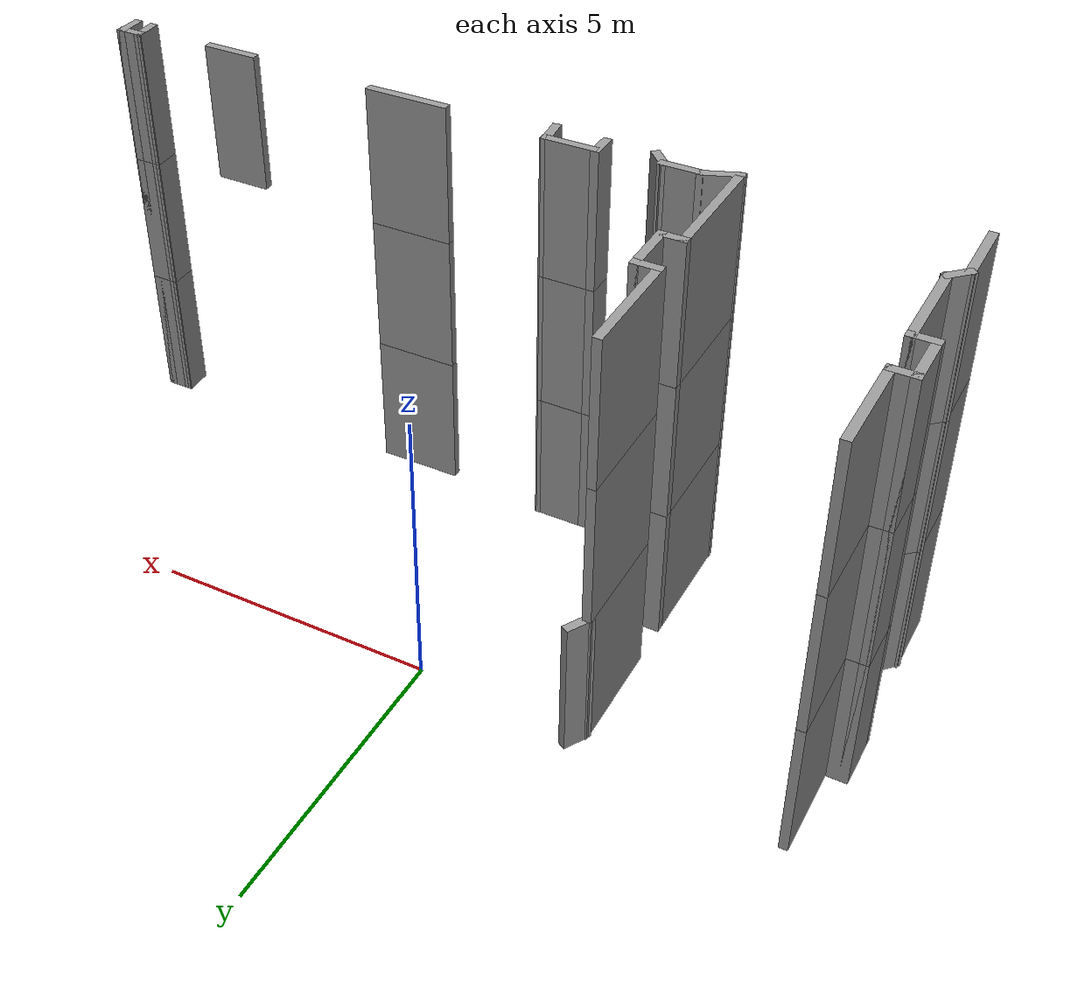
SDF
<sdf version="1.6">
 <model name="use_case1_stacked">
  <pose>0.822713 6.83476 0 0 -0 0</pose>
  <link name="Wall_100">
   <collision name="Wall_100_Collision">
    <geometry><box><size>0.5 0.15 2.5</size></box></geometry>
    <pose>0 0 1.25 0 -0 0</pose>
   </collision>
   <visual name="Wall_100_Visual">
    <pose>0 0 1.25 0 -0 0</pose>
    <geometry><box><size>0.5 0.15 2.5</size></box></geometry>
    <material>
     <script><uri>file://media/materials/scripts/gazebo.material</uri><name>Gazebo/Grey</name></script>
     <ambient>1 1 1 1</ambient>
    </material>
   </visual>
   <pose>-3.67133 -6.68702 0 0 0 -2.0944</pose>
  </link>
  <link name="Wall_101">
   <collision name="Wall_101_Collision">
    <geometry><box><size>2 0.15 2.5</size></box></geometry>
    <pose>0 0 1.25 0 -0 0</pose>
   </collision>
   <visual name="Wall_101_Visual">
    <pose>0 0 1.25 0 -0 0</pose>
    <geometry><box><size>2 0.15 2.5</size></box></geometry>
    <material>
     <script><uri>file://media/materials/scripts/gazebo.material</uri><name>Gazebo/Grey</name></script>
     <ambient>1 1 1 1</ambient>
    </material>
   </visual>
   <pose>-3.75883 -7.76357 0 0 0 -1.5708</pose>
  </link>
  <link name="Wall_103">
   <collision name="Wall_103_Collision">
    <geometry><box><size>0.5 0.15 2.5</size></box></geometry>
    <pose>0 0 1.25 0 -0 0</pose>
   </collision>
   <visual name="Wall_103_Visual">
    <pose>0 0 1.25 0 -0 0</pose>
    <geometry><box><size>0.5 0.15 2.5</size></box></geometry>
    <material>
     <script><uri>file://media/materials/scripts/gazebo.material</uri><name>Gazebo/Grey</name></script>
     <ambient>1 1 1 1</ambient>
    </material>
   </visual>
   <pose>-3.58383 -8.68857 0 0 -0 0</pose>
  </link>
  <link name="Wall_104">
   <collision name="Wall_104_Collision">
    <geometry><box><size>1 0.15 2.5</size></box></geometry>
    <pose>0 0 1.25 0 -0 0</pose>
   </collision>
   <visual name="Wall_104_Visual">
    <pose>0 0 1.25 0 -0 0</pose>
    <geometry><box><size>1 0.15 2.5</size></box></geometry>
    <material>
     <script><uri>file://media/materials/scripts/gazebo.material</uri><name>Gazebo/Grey</name></script>
     <ambient>1 1 1 1</ambient>
    </material>
   </visual>
   <pose>-3.40883 -9.11357 0 0 0 -1.5708</pose>
  </link>
  <link name="Wall_105">
   <collision name="Wall_105_Collision">
    <geometry><box><size>0.5 0.15 2.5</size></box></geometry>
    <pose>0 0 1.25 0 -0 0</pose>
   </collision>
   <visual name="Wall_105_Visual">
    <pose>0 0 1.25 0 -0 0</pose>
    <geometry><box><size>0.5 0.15 2.5</size></box></geometry>
    <material>
     <script><uri>file://media/materials/scripts/gazebo.material</uri><name>Gazebo/Grey</name></script>
     <ambient>1 1 1 1</ambient>
    </material>
   </visual>
   <pose>-3.58383 -9.53857 0 0 -0 3.14159</pose>
  </link>
  <link name="Wall_106">
   <collision name="Wall_106_Collision">
    <geometry><box><size>2.25 0.15 2.5</size></box></geometry>
    <pose>0 0 1.25 0 -0 0</pose>
   </collision>
   <visual name="Wall_106_Visual">
    <pose>0 0 1.25 0 -0 0</pose>
    <geometry><box><size>2.25 0.15 2.5</size></box></geometry>
    <material>
     <script><uri>file://media/materials/scripts/gazebo.material</uri><name>Gazebo/Grey</name></script>
     <ambient>1 1 1 1</ambient>
    </material>
   </visual>
   <pose>-3.75883 -10.5886 0 0 0 -1.5708</pose>
  </link>
  <link name="Wall_108">
   <collision name="Wall_108_Collision">
    <geometry><box><size>0.740104 0.15 2.5</size></box></geometry>
    <pose>0 0 1.25 0 -0 0</pose>
   </collision>
   <visual name="Wall_108_Visual">
    <pose>0 0 1.25 0 -0 0</pose>
    <geometry><box><size>0.740104 0.15 2.5</size></box></geometry>
    <material>
     <script><uri>file://media/materials/scripts/gazebo.material</uri><name>Gazebo/Grey</name></script>
     <ambient>1 1 1 1</ambient>
    </material>
   </visual>
   <pose>-3.48434 -11.5303 0 0 -0 0.375606</pose>
  </link>
  <link name="Wall_109">
   <collision name="Wall_109_Collision">
    <geometry><box><size>0.75 0.15 2.5</size></box></geometry>
    <pose>0 0 1.25 0 -0 0</pose>
   </collision>
   <visual name="Wall_109_Visual">
    <pose>0 0 1.25 0 -0 0</pose>
    <geometry><box><size>0.75 0.15 2.5</size></box></geometry>
    <material>
     <script><uri>file://media/materials/scripts/gazebo.material</uri><name>Gazebo/Grey</name></script>
     <ambient>1 1 1 1</ambient>
    </material>
   </visual>
   <pose>-2.89457 -11.4374 0 0 -0 0</pose>
  </link>
  <link name="Wall_110">
   <collision name="Wall_110_Collision">
    <geometry><box><size>0.489357 0.15 2.5</size></box></geometry>
    <pose>0 0 1.25 0 -0 0</pose>
   </collision>
   <visual name="Wall_110_Visual">
    <pose>0 0 1.25 0 -0 0</pose>
    <geometry><box><size>0.489357 0.15 2.5</size></box></geometry>
    <material>
     <script><uri>file://media/materials/scripts/gazebo.material</uri><name>Gazebo/Grey</name></script>
     <ambient>1 1 1 1</ambient>
    </material>
   </visual>
   <pose>-2.49377 -11.5458 0 0 0 -0.817273</pose>
  </link>
  <link name="Wall_112">
   <collision name="Wall_112_Collision">
    <geometry><box><size>0.484705 0.15 2.5</size></box></geometry>
    <pose>0 0 1.25 0 -0 0</pose>
   </collision>
   <visual name="Wall_112_Visual">
    <pose>0 0 1.25 0 -0 0</pose>
    <geometry><box><size>0.484705 0.15 2.5</size></box></geometry>
    <material>
     <script><uri>file://media/materials/scripts/gazebo.material</uri><name>Gazebo/Grey</name></script>
     <ambient>1 1 1 1</ambient>
    </material>
   </visual>
   <pose>-1.52767 -11.5022 0 0 -0 1.5708</pose>
  </link>
  <link name="Wall_113">
   <collision name="Wall_113_Collision">
    <geometry><box><size>1 0.15 2.5</size></box></geometry>
    <pose>0 0 1.25 0 -0 0</pose>
   </collision>
   <visual name="Wall_113_Visual">
    <pose>0 0 1.25 0 -0 0</pose>
    <geometry><box><size>1 0.15 2.5</size></box></geometry>
    <material>
     <script><uri>file://media/materials/scripts/gazebo.material</uri><name>Gazebo/Grey</name></script>
     <ambient>1 1 1 1</ambient>
    </material>
   </visual>
   <pose>-1.08737 -11.3349 0 0 -0 0</pose>
  </link>
  <link name="Wall_114">
   <collision name="Wall_114_Collision">
    <geometry><box><size>0.548536 0.15 2.5</size></box></geometry>
    <pose>0 0 1.25 0 -0 0</pose>
   </collision>
   <visual name="Wall_114_Visual">
    <pose>0 0 1.25 0 -0 0</pose>
    <geometry><box><size>0.548536 0.15 2.5</size></box></geometry>
    <material>
     <script><uri>file://media/materials/scripts/gazebo.material</uri><name>Gazebo/Grey</name></script>
     <ambient>1 1 1 1</ambient>
    </material>
   </visual>
   <pose>-0.654727 -11.5328 0 0 0 -1.45541</pose>
  </link>
  <link name="Wall_117">
   <collision name="Wall_117_Collision">
    <geometry><box><size>1.5 0.15 2.5</size></box></geometry>
    <pose>0 0 1.25 0 -0 0</pose>
   </collision>
   <visual name="Wall_117_Visual">
    <pose>0 0 1.25 0 -0 0</pose>
    <geometry><box><size>1.5 0.15 2.5</size></box></geometry>
    <material>
     <script><uri>file://media/materials/scripts/gazebo.material</uri><name>Gazebo/Grey</name></script>
     <ambient>1 1 1 1</ambient>
    </material>
   </visual>
   <pose>1.93103 -11.5099 0 0 -0 0</pose>
  </link>
  <link name="Wall_124">
   <collision name="Wall_124_Collision">
    <geometry><box><size>0.500334 0.15 2.5</size></box></geometry>
    <pose>0 0 1.25 0 -0 0</pose>
   </collision>
   <visual name="Wall_124_Visual">
    <pose>0 0 1.25 0 -0 0</pose>
    <geometry><box><size>0.500334 0.15 2.5</size></box></geometry>
    <material>
     <script><uri>file://media/materials/scripts/gazebo.material</uri><name>Gazebo/Grey</name></script>
     <ambient>1 1 1 1</ambient>
    </material>
   </visual>
   <pose>7.25209 -11.5824 0 0 -0 1.61447</pose>
  </link>
  <link name="Wall_125">
   <collision name="Wall_125_Collision">
    <geometry><box><size>0.5 0.15 2.5</size></box></geometry>
    <pose>0 0 1.25 0 -0 0</pose>
   </collision>
   <visual name="Wall_125_Visual">
    <pose>0 0 1.25 0 -0 0</pose>
    <geometry><box><size>0.5 0.15 2.5</size></box></geometry>
    <material>
     <script><uri>file://media/materials/scripts/gazebo.material</uri><name>Gazebo/Grey</name></script>
     <ambient>1 1 1 1</ambient>
    </material>
   </visual>
   <pose>7.43473 -11.4074 0 0 -0 0</pose>
  </link>
  <link name="Wall_126">
   <collision name="Wall_126_Collision">
    <geometry><box><size>0.5 0.15 2.5</size></box></geometry>
    <pose>0 0 1.25 0 -0 0</pose>
   </collision>
   <visual name="Wall_126_Visual">
    <pose>0 0 1.25 0 -0 0</pose>
    <geometry><box><size>0.5 0.15 2.5</size></box></geometry>
    <material>
     <script><uri>file://media/materials/scripts/gazebo.material</uri><name>Gazebo/Grey</name></script>
     <ambient>1 1 1 1</ambient>
    </material>
   </visual>
   <pose>7.59444 -11.5824 0 0 0 -1.5708</pose>
  </link>
  <link name="Wall_276">
   <collision name="Wall_276_Collision">
    <geometry><box><size>1.25 0.15 2.5</size></box></geometry>
    <pose>0 0 1.25 0 -0 0</pose>
   </collision>
   <visual name="Wall_276_Visual">
    <pose>0 0 1.25 0 -0 0</pose>
    <geometry><box><size>1.25 0.15 2.5</size></box></geometry>
    <material>
     <script><uri>file://media/materials/scripts/gazebo.material</uri><name>Gazebo/Grey</name></script>
     <ambient>1 1 1 1</ambient>
    </material>
   </visual>
   <pose>-7.5129 -11.16 2.5 0 -0 1.5708</pose>
  </link>
  <link name="Wall_277">
   <collision name="Wall_277_Collision">
    <geometry><box><size>0.5 0.15 2.5</size></box></geometry>
    <pose>0 0 1.25 0 -0 0</pose>
   </collision>
   <visual name="Wall_277_Visual">
    <pose>0 0 1.25 0 -0 0</pose>
    <geometry><box><size>0.5 0.15 2.5</size></box></geometry>
    <material>
     <script><uri>file://media/materials/scripts/gazebo.material</uri><name>Gazebo/Grey</name></script>
     <ambient>1 1 1 1</ambient>
    </material>
   </visual>
   <pose>-7.38916 -10.4863 2.5 0 -0 0.785398</pose>
  </link>
  <link name="Wall_278">
   <collision name="Wall_278_Collision">
    <geometry><box><size>1.75 0.15 2.5</size></box></geometry>
    <pose>0 0 1.25 0 -0 0</pose>
   </collision>
   <visual name="Wall_278_Visual">
    <pose>0 0 1.25 0 -0 0</pose>
    <geometry><box><size>1.75 0.15 2.5</size></box></geometry>
    <material>
     <script><uri>file://media/materials/scripts/gazebo.material</uri><name>Gazebo/Grey</name></script>
     <ambient>1 1 1 1</ambient>
    </material>
   </visual>
   <pose>-7.26541 -9.56256 2.5 0 -0 1.5708</pose>
  </link>
  <link name="Wall_279">
   <collision name="Wall_279_Collision">
    <geometry><box><size>0.5 0.15 2.5</size></box></geometry>
    <pose>0 0 1.25 0 -0 0</pose>
   </collision>
   <visual name="Wall_279_Visual">
    <pose>0 0 1.25 0 -0 0</pose>
    <geometry><box><size>0.5 0.15 2.5</size></box></geometry>
    <material>
     <script><uri>file://media/materials/scripts/gazebo.material</uri><name>Gazebo/Grey</name></script>
     <ambient>1 1 1 1</ambient>
    </material>
   </visual>
   <pose>-7.44041 -8.76256 2.5 0 -0 3.14159</pose>
  </link>
  <link name="Wall_280">
   <collision name="Wall_280_Collision">
    <geometry><box><size>1 0.15 2.5</size></box></geometry>
    <pose>0 0 1.25 0 -0 0</pose>
   </collision>
   <visual name="Wall_280_Visual">
    <pose>0 0 1.25 0 -0 0</pose>
    <geometry><box><size>1 0.15 2.5</size></box></geometry>
    <material>
     <script><uri>file://media/materials/scripts/gazebo.material</uri><name>Gazebo/Grey</name></script>
     <ambient>1 1 1 1</ambient>
    </material>
   </visual>
   <pose>-7.61541 -8.33756 2.5 0 -0 1.5708</pose>
  </link>
  <link name="Wall_281">
   <collision name="Wall_281_Collision">
    <geometry><box><size>0.5 0.15 2.5</size></box></geometry>
    <pose>0 0 1.25 0 -0 0</pose>
   </collision>
   <visual name="Wall_281_Visual">
    <pose>0 0 1.25 0 -0 0</pose>
    <geometry><box><size>0.5 0.15 2.5</size></box></geometry>
    <material>
     <script><uri>file://media/materials/scripts/gazebo.material</uri><name>Gazebo/Grey</name></script>
     <ambient>1 1 1 1</ambient>
    </material>
   </visual>
   <pose>-7.44041 -7.91256 2.5 0 -0 0</pose>
  </link>
  <link name="Wall_282">
   <collision name="Wall_282_Collision">
    <geometry><box><size>1.75 0.15 2.5</size></box></geometry>
    <pose>0 0 1.25 0 -0 0</pose>
   </collision>
   <visual name="Wall_282_Visual">
    <pose>0 0 1.25 0 -0 0</pose>
    <geometry><box><size>1.75 0.15 2.5</size></box></geometry>
    <material>
     <script><uri>file://media/materials/scripts/gazebo.material</uri><name>Gazebo/Grey</name></script>
     <ambient>1 1 1 1</ambient>
    </material>
   </visual>
   <pose>-7.26541 -7.11256 2.5 0 -0 1.5708</pose>
  </link>
  <link name="Wall_305">
   <collision name="Wall_305_Collision">
    <geometry><box><size>2 0.15 2.5</size></box></geometry>
    <pose>0 0 1.25 0 -0 0</pose>
   </collision>
   <visual name="Wall_305_Visual">
    <pose>0 0 1.25 0 -0 0</pose>
    <geometry><box><size>2 0.15 2.5</size></box></geometry>
    <material>
     <script><uri>file://media/materials/scripts/gazebo.material</uri><name>Gazebo/Grey</name></script>
     <ambient>1 1 1 1</ambient>
    </material>
   </visual>
   <pose>-3.75883 -7.76357 2.5 0 0 -1.5708</pose>
  </link>
  <link name="Wall_306">
   <collision name="Wall_306_Collision">
    <geometry><box><size>0.5 0.15 2.5</size></box></geometry>
    <pose>0 0 1.25 0 -0 0</pose>
   </collision>
   <visual name="Wall_306_Visual">
    <pose>0 0 1.25 0 -0 0</pose>
    <geometry><box><size>0.5 0.15 2.5</size></box></geometry>
    <material>
     <script><uri>file://media/materials/scripts/gazebo.material</uri><name>Gazebo/Grey</name></script>
     <ambient>1 1 1 1</ambient>
    </material>
   </visual>
   <pose>-3.58383 -8.68857 2.5 0 -0 0</pose>
  </link>
  <link name="Wall_307">
   <collision name="Wall_307_Collision">
    <geometry><box><size>1 0.15 2.5</size></box></geometry>
    <pose>0 0 1.25 0 -0 0</pose>
   </collision>
   <visual name="Wall_307_Visual">
    <pose>0 0 1.25 0 -0 0</pose>
    <geometry><box><size>1 0.15 2.5</size></box></geometry>
    <material>
     <script><uri>file://media/materials/scripts/gazebo.material</uri><name>Gazebo/Grey</name></script>
     <ambient>1 1 1 1</ambient>
    </material>
   </visual>
   <pose>-3.40883 -9.11357 2.5 0 0 -1.5708</pose>
  </link>
  <link name="Wall_308">
   <collision name="Wall_308_Collision">
    <geometry><box><size>0.5 0.15 2.5</size></box></geometry>
    <pose>0 0 1.25 0 -0 0</pose>
   </collision>
   <visual name="Wall_308_Visual">
    <pose>0 0 1.25 0 -0 0</pose>
    <geometry><box><size>0.5 0.15 2.5</size></box></geometry>
    <material>
     <script><uri>file://media/materials/scripts/gazebo.material</uri><name>Gazebo/Grey</name></script>
     <ambient>1 1 1 1</ambient>
    </material>
   </visual>
   <pose>-3.58383 -9.53857 2.5 0 -0 3.14159</pose>
  </link>
  <link name="Wall_309">
   <collision name="Wall_309_Collision">
    <geometry><box><size>2.25 0.15 2.5</size></box></geometry>
    <pose>0 0 1.25 0 -0 0</pose>
   </collision>
   <visual name="Wall_309_Visual">
    <pose>0 0 1.25 0 -0 0</pose>
    <geometry><box><size>2.25 0.15 2.5</size></box></geometry>
    <material>
     <script><uri>file://media/materials/scripts/gazebo.material</uri><name>Gazebo/Grey</name></script>
     <ambient>1 1 1 1</ambient>
    </material>
   </visual>
   <pose>-3.75883 -10.5886 2.5 0 0 -1.5708</pose>
  </link>
  <link name="Wall_310">
   <collision name="Wall_310_Collision">
    <geometry><box><size>0.740104 0.15 2.5</size></box></geometry>
    <pose>0 0 1.25 0 -0 0</pose>
   </collision>
   <visual name="Wall_310_Visual">
    <pose>0 0 1.25 0 -0 0</pose>
    <geometry><box><size>0.740104 0.15 2.5</size></box></geometry>
    <material>
     <script><uri>file://media/materials/scripts/gazebo.material</uri><name>Gazebo/Grey</name></script>
     <ambient>1 1 1 1</ambient>
    </material>
   </visual>
   <pose>-3.48434 -11.5303 2.5 0 -0 0.375606</pose>
  </link>
  <link name="Wall_311">
   <collision name="Wall_311_Collision">
    <geometry><box><size>0.75 0.15 2.5</size></box></geometry>
    <pose>0 0 1.25 0 -0 0</pose>
   </collision>
   <visual name="Wall_311_Visual">
    <pose>0 0 1.25 0 -0 0</pose>
    <geometry><box><size>0.75 0.15 2.5</size></box></geometry>
    <material>
     <script><uri>file://media/materials/scripts/gazebo.material</uri><name>Gazebo/Grey</name></script>
     <ambient>1 1 1 1</ambient>
    </material>
   </visual>
   <pose>-2.89457 -11.4374 2.5 0 -0 0</pose>
  </link>
  <link name="Wall_312">
   <collision name="Wall_312_Collision">
    <geometry><box><size>0.489357 0.15 2.5</size></box></geometry>
    <pose>0 0 1.25 0 -0 0</pose>
   </collision>
   <visual name="Wall_312_Visual">
    <pose>0 0 1.25 0 -0 0</pose>
    <geometry><box><size>0.489357 0.15 2.5</size></box></geometry>
    <material>
     <script><uri>file://media/materials/scripts/gazebo.material</uri><name>Gazebo/Grey</name></script>
     <ambient>1 1 1 1</ambient>
    </material>
   </visual>
   <pose>-2.49377 -11.5458 2.5 0 0 -0.817273</pose>
  </link>
  <link name="Wall_314">
   <collision name="Wall_314_Collision">
    <geometry><box><size>0.484705 0.15 2.5</size></box></geometry>
    <pose>0 0 1.25 0 -0 0</pose>
   </collision>
   <visual name="Wall_314_Visual">
    <pose>0 0 1.25 0 -0 0</pose>
    <geometry><box><size>0.484705 0.15 2.5</size></box></geometry>
    <material>
     <script><uri>file://media/materials/scripts/gazebo.material</uri><name>Gazebo/Grey</name></script>
     <ambient>1 1 1 1</ambient>
    </material>
   </visual>
   <pose>-1.52767 -11.5022 2.5 0 -0 1.5708</pose>
  </link>
  <link name="Wall_315">
   <collision name="Wall_315_Collision">
    <geometry><box><size>1 0.15 2.5</size></box></geometry>
    <pose>0 0 1.25 0 -0 0</pose>
   </collision>
   <visual name="Wall_315_Visual">
    <pose>0 0 1.25 0 -0 0</pose>
    <geometry><box><size>1 0.15 2.5</size></box></geometry>
    <material>
     <script><uri>file://media/materials/scripts/gazebo.material</uri><name>Gazebo/Grey</name></script>
     <ambient>1 1 1 1</ambient>
    </material>
   </visual>
   <pose>-1.08737 -11.3349 2.5 0 -0 0</pose>
  </link>
  <link name="Wall_316">
   <collision name="Wall_316_Collision">
    <geometry><box><size>0.548536 0.15 2.5</size></box></geometry>
    <pose>0 0 1.25 0 -0 0</pose>
   </collision>
   <visual name="Wall_316_Visual">
    <pose>0 0 1.25 0 -0 0</pose>
    <geometry><box><size>0.548536 0.15 2.5</size></box></geometry>
    <material>
     <script><uri>file://media/materials/scripts/gazebo.material</uri><name>Gazebo/Grey</name></script>
     <ambient>1 1 1 1</ambient>
    </material>
   </visual>
   <pose>-0.654727 -11.5328 2.5 0 0 -1.45541</pose>
  </link>
  <link name="Wall_319">
   <collision name="Wall_319_Collision">
    <geometry><box><size>1.5 0.15 2.5</size></box></geometry>
    <pose>0 0 1.25 0 -0 0</pose>
   </collision>
   <visual name="Wall_319_Visual">
    <pose>0 0 1.25 0 -0 0</pose>
    <geometry><box><size>1.5 0.15 2.5</size></box></geometry>
    <material>
     <script><uri>file://media/materials/scripts/gazebo.material</uri><name>Gazebo/Grey</name></script>
     <ambient>1 1 1 1</ambient>
    </material>
   </visual>
   <pose>1.93103 -11.5099 2.5 0 -0 0</pose>
  </link>
  <link name="Wall_326">
   <collision name="Wall_326_Collision">
    <geometry><box><size>0.500334 0.15 2.5</size></box></geometry>
    <pose>0 0 1.25 0 -0 0</pose>
   </collision>
   <visual name="Wall_326_Visual">
    <pose>0 0 1.25 0 -0 0</pose>
    <geometry><box><size>0.500334 0.15 2.5</size></box></geometry>
    <material>
     <script><uri>file://media/materials/scripts/gazebo.material</uri><name>Gazebo/Grey</name></script>
     <ambient>1 1 1 1</ambient>
    </material>
   </visual>
   <pose>7.25209 -11.5824 2.5 0 -0 1.61447</pose>
  </link>
  <link name="Wall_327">
   <collision name="Wall_327_Collision">
    <geometry><box><size>0.5 0.15 2.5</size></box></geometry>
    <pose>0 0 1.25 0 -0 0</pose>
   </collision>
   <visual name="Wall_327_Visual">
    <pose>0 0 1.25 0 -0 0</pose>
    <geometry><box><size>0.5 0.15 2.5</size></box></geometry>
    <material>
     <script><uri>file://media/materials/scripts/gazebo.material</uri><name>Gazebo/Grey</name></script>
     <ambient>1 1 1 1</ambient>
    </material>
   </visual>
   <pose>7.43473 -11.4074 2.5 0 -0 0</pose>
  </link>
  <link name="Wall_328">
   <collision name="Wall_328_Collision">
    <geometry><box><size>0.5 0.15 2.5</size></box></geometry>
    <pose>0 0 1.25 0 -0 0</pose>
   </collision>
   <visual name="Wall_328_Visual">
    <pose>0 0 1.25 0 -0 0</pose>
    <geometry><box><size>0.5 0.15 2.5</size></box></geometry>
    <material>
     <script><uri>file://media/materials/scripts/gazebo.material</uri><name>Gazebo/Grey</name></script>
     <ambient>1 1 1 1</ambient>
    </material>
   </visual>
   <pose>7.59444 -11.5824 2.5 0 0 -1.5708</pose>
  </link>
  <link name="Wall_343">
   <collision name="Wall_343_Collision">
    <geometry><box><size>1.25 0.15 2.5</size></box></geometry>
    <pose>0 0 1.25 0 -0 0</pose>
   </collision>
   <visual name="Wall_343_Visual">
    <pose>0 0 1.25 0 -0 0</pose>
    <geometry><box><size>1.25 0.15 2.5</size></box></geometry>
    <material>
     <script><uri>file://media/materials/scripts/gazebo.material</uri><name>Gazebo/Grey</name></script>
     <ambient>1 1 1 1</ambient>
    </material>
   </visual>
   <pose>-7.5129 -11.16 5 0 -0 1.5708</pose>
  </link>
  <link name="Wall_344">
   <collision name="Wall_344_Collision">
    <geometry><box><size>0.5 0.15 2.5</size></box></geometry>
    <pose>0 0 1.25 0 -0 0</pose>
   </collision>
   <visual name="Wall_344_Visual">
    <pose>0 0 1.25 0 -0 0</pose>
    <geometry><box><size>0.5 0.15 2.5</size></box></geometry>
    <material>
     <script><uri>file://media/materials/scripts/gazebo.material</uri><name>Gazebo/Grey</name></script>
     <ambient>1 1 1 1</ambient>
    </material>
   </visual>
   <pose>-7.38916 -10.4863 5 0 -0 0.785398</pose>
  </link>
  <link name="Wall_345">
   <collision name="Wall_345_Collision">
    <geometry><box><size>1.75 0.15 2.5</size></box></geometry>
    <pose>0 0 1.25 0 -0 0</pose>
   </collision>
   <visual name="Wall_345_Visual">
    <pose>0 0 1.25 0 -0 0</pose>
    <geometry><box><size>1.75 0.15 2.5</size></box></geometry>
    <material>
     <script><uri>file://media/materials/scripts/gazebo.material</uri><name>Gazebo/Grey</name></script>
     <ambient>1 1 1 1</ambient>
    </material>
   </visual>
   <pose>-7.26541 -9.56256 5 0 -0 1.5708</pose>
  </link>
  <link name="Wall_346">
   <collision name="Wall_346_Collision">
    <geometry><box><size>0.5 0.15 2.5</size></box></geometry>
    <pose>0 0 1.25 0 -0 0</pose>
   </collision>
   <visual name="Wall_346_Visual">
    <pose>0 0 1.25 0 -0 0</pose>
    <geometry><box><size>0.5 0.15 2.5</size></box></geometry>
    <material>
     <script><uri>file://media/materials/scripts/gazebo.material</uri><name>Gazebo/Grey</name></script>
     <ambient>1 1 1 1</ambient>
    </material>
   </visual>
   <pose>-7.44041 -8.76256 5 0 -0 3.14159</pose>
  </link>
  <link name="Wall_347">
   <collision name="Wall_347_Collision">
    <geometry><box><size>1 0.15 2.5</size></box></geometry>
    <pose>0 0 1.25 0 -0 0</pose>
   </collision>
   <visual name="Wall_347_Visual">
    <pose>0 0 1.25 0 -0 0</pose>
    <geometry><box><size>1 0.15 2.5</size></box></geometry>
    <material>
     <script><uri>file://media/materials/scripts/gazebo.material</uri><name>Gazebo/Grey</name></script>
     <ambient>1 1 1 1</ambient>
    </material>
   </visual>
   <pose>-7.61541 -8.33756 5 0 -0 1.5708</pose>
  </link>
  <link name="Wall_348">
   <collision name="Wall_348_Collision">
    <geometry><box><size>0.5 0.15 2.5</size></box></geometry>
    <pose>0 0 1.25 0 -0 0</pose>
   </collision>
   <visual name="Wall_348_Visual">
    <pose>0 0 1.25 0 -0 0</pose>
    <geometry><box><size>0.5 0.15 2.5</size></box></geometry>
    <material>
     <script><uri>file://media/materials/scripts/gazebo.material</uri><name>Gazebo/Grey</name></script>
     <ambient>1 1 1 1</ambient>
    </material>
   </visual>
   <pose>-7.44041 -7.91256 5 0 -0 0</pose>
  </link>
  <link name="Wall_349">
   <collision name="Wall_349_Collision">
    <geometry><box><size>1.75 0.15 2.5</size></box></geometry>
    <pose>0 0 1.25 0 -0 0</pose>
   </collision>
   <visual name="Wall_349_Visual">
    <pose>0 0 1.25 0 -0 0</pose>
    <geometry><box><size>1.75 0.15 2.5</size></box></geometry>
    <material>
     <script><uri>file://media/materials/scripts/gazebo.material</uri><name>Gazebo/Grey</name></script>
     <ambient>1 1 1 1</ambient>
    </material>
   </visual>
   <pose>-7.26541 -7.11256 5 0 -0 1.5708</pose>
  </link>
  <link name="Wall_372">
   <collision name="Wall_372_Collision">
    <geometry><box><size>2 0.15 2.5</size></box></geometry>
    <pose>0 0 1.25 0 -0 0</pose>
   </collision>
   <visual name="Wall_372_Visual">
    <pose>0 0 1.25 0 -0 0</pose>
    <geometry><box><size>2 0.15 2.5</size></box></geometry>
    <material>
     <script><uri>file://media/materials/scripts/gazebo.material</uri><name>Gazebo/Grey</name></script>
     <ambient>1 1 1 1</ambient>
    </material>
   </visual>
   <pose>-3.75883 -7.76357 5 0 0 -1.5708</pose>
  </link>
  <link name="Wall_373">
   <collision name="Wall_373_Collision">
    <geometry><box><size>0.5 0.15 2.5</size></box></geometry>
    <pose>0 0 1.25 0 -0 0</pose>
   </collision>
   <visual name="Wall_373_Visual">
    <pose>0 0 1.25 0 -0 0</pose>
    <geometry><box><size>0.5 0.15 2.5</size></box></geometry>
    <material>
     <script><uri>file://media/materials/scripts/gazebo.material</uri><name>Gazebo/Grey</name></script>
     <ambient>1 1 1 1</ambient>
    </material>
   </visual>
   <pose>-3.58383 -8.68857 5 0 -0 0</pose>
  </link>
  <link name="Wall_374">
   <collision name="Wall_374_Collision">
    <geometry><box><size>1 0.15 2.5</size></box></geometry>
    <pose>0 0 1.25 0 -0 0</pose>
   </collision>
   <visual name="Wall_374_Visual">
    <pose>0 0 1.25 0 -0 0</pose>
    <geometry><box><size>1 0.15 2.5</size></box></geometry>
    <material>
     <script><uri>file://media/materials/scripts/gazebo.material</uri><name>Gazebo/Grey</name></script>
     <ambient>1 1 1 1</ambient>
    </material>
   </visual>
   <pose>-3.40883 -9.11357 5 0 0 -1.5708</pose>
  </link>
  <link name="Wall_375">
   <collision name="Wall_375_Collision">
    <geometry><box><size>0.5 0.15 2.5</size></box></geometry>
    <pose>0 0 1.25 0 -0 0</pose>
   </collision>
   <visual name="Wall_375_Visual">
    <pose>0 0 1.25 0 -0 0</pose>
    <geometry><box><size>0.5 0.15 2.5</size></box></geometry>
    <material>
     <script><uri>file://media/materials/scripts/gazebo.material</uri><name>Gazebo/Grey</name></script>
     <ambient>1 1 1 1</ambient>
    </material>
   </visual>
   <pose>-3.58383 -9.53857 5 0 -0 3.14159</pose>
  </link>
  <link name="Wall_376">
   <collision name="Wall_376_Collision">
    <geometry><box><size>2.25 0.15 2.5</size></box></geometry>
    <pose>0 0 1.25 0 -0 0</pose>
   </collision>
   <visual name="Wall_376_Visual">
    <pose>0 0 1.25 0 -0 0</pose>
    <geometry><box><size>2.25 0.15 2.5</size></box></geometry>
    <material>
     <script><uri>file://media/materials/scripts/gazebo.material</uri><name>Gazebo/Grey</name></script>
     <ambient>1 1 1 1</ambient>
    </material>
   </visual>
   <pose>-3.75883 -10.5886 5 0 0 -1.5708</pose>
  </link>
  <link name="Wall_377">
   <collision name="Wall_377_Collision">
    <geometry><box><size>0.740104 0.15 2.5</size></box></geometry>
    <pose>0 0 1.25 0 -0 0</pose>
   </collision>
   <visual name="Wall_377_Visual">
    <pose>0 0 1.25 0 -0 0</pose>
    <geometry><box><size>0.740104 0.15 2.5</size></box></geometry>
    <material>
     <script><uri>file://media/materials/scripts/gazebo.material</uri><name>Gazebo/Grey</name></script>
     <ambient>1 1 1 1</ambient>
    </material>
   </visual>
   <pose>-3.48434 -11.5303 5 0 -0 0.375606</pose>
  </link>
  <link name="Wall_378">
   <collision name="Wall_378_Collision">
    <geometry><box><size>0.75 0.15 2.5</size></box></geometry>
    <pose>0 0 1.25 0 -0 0</pose>
   </collision>
   <visual name="Wall_378_Visual">
    <pose>0 0 1.25 0 -0 0</pose>
    <geometry><box><size>0.75 0.15 2.5</size></box></geometry>
    <material>
     <script><uri>file://media/materials/scripts/gazebo.material</uri><name>Gazebo/Grey</name></script>
     <ambient>1 1 1 1</ambient>
    </material>
   </visual>
   <pose>-2.89457 -11.4374 5 0 -0 0</pose>
  </link>
  <link name="Wall_379">
   <collision name="Wall_379_Collision">
    <geometry><box><size>0.489357 0.15 2.5</size></box></geometry>
    <pose>0 0 1.25 0 -0 0</pose>
   </collision>
   <visual name="Wall_379_Visual">
    <pose>0 0 1.25 0 -0 0</pose>
    <geometry><box><size>0.489357 0.15 2.5</size></box></geometry>
    <material>
     <script><uri>file://media/materials/scripts/gazebo.material</uri><name>Gazebo/Grey</name></script>
     <ambient>1 1 1 1</ambient>
    </material>
   </visual>
   <pose>-2.49377 -11.5458 5 0 0 -0.817273</pose>
  </link>
  <link name="Wall_381">
   <collision name="Wall_381_Collision">
    <geometry><box><size>0.484705 0.15 2.5</size></box></geometry>
    <pose>0 0 1.25 0 -0 0</pose>
   </collision>
   <visual name="Wall_381_Visual">
    <pose>0 0 1.25 0 -0 0</pose>
    <geometry><box><size>0.484705 0.15 2.5</size></box></geometry>
    <material>
     <script><uri>file://media/materials/scripts/gazebo.material</uri><name>Gazebo/Grey</name></script>
     <ambient>1 1 1 1</ambient>
    </material>
   </visual>
   <pose>-1.52767 -11.5022 5 0 -0 1.5708</pose>
  </link>
  <link name="Wall_382">
   <collision name="Wall_382_Collision">
    <geometry><box><size>1 0.15 2.5</size></box></geometry>
    <pose>0 0 1.25 0 -0 0</pose>
   </collision>
   <visual name="Wall_382_Visual">
    <pose>0 0 1.25 0 -0 0</pose>
    <geometry><box><size>1 0.15 2.5</size></box></geometry>
    <material>
     <script><uri>file://media/materials/scripts/gazebo.material</uri><name>Gazebo/Grey</name></script>
     <ambient>1 1 1 1</ambient>
    </material>
   </visual>
   <pose>-1.08737 -11.3349 5 0 -0 0</pose>
  </link>
  <link name="Wall_383">
   <collision name="Wall_383_Collision">
    <geometry><box><size>0.548536 0.15 2.5</size></box></geometry>
    <pose>0 0 1.25 0 -0 0</pose>
   </collision>
   <visual name="Wall_383_Visual">
    <pose>0 0 1.25 0 -0 0</pose>
    <geometry><box><size>0.548536 0.15 2.5</size></box></geometry>
    <material>
     <script><uri>file://media/materials/scripts/gazebo.material</uri><name>Gazebo/Grey</name></script>
     <ambient>1 1 1 1</ambient>
    </material>
   </visual>
   <pose>-0.654727 -11.5328 5 0 0 -1.45541</pose>
  </link>
  <link name="Wall_386">
   <collision name="Wall_386_Collision">
    <geometry><box><size>1.5 0.15 2.5</size></box></geometry>
    <pose>0 0 1.25 0 -0 0</pose>
   </collision>
   <visual name="Wall_386_Visual">
    <pose>0 0 1.25 0 -0 0</pose>
    <geometry><box><size>1.5 0.15 2.5</size></box></geometry>
    <material>
     <script><uri>file://media/materials/scripts/gazebo.material</uri><name>Gazebo/Grey</name></script>
     <ambient>1 1 1 1</ambient>
    </material>
   </visual>
   <pose>1.93103 -11.5099 5 0 -0 0</pose>
  </link>
  <link name="Wall_390">
   <collision name="Wall_390_Collision">
    <geometry><box><size>1 0.15 2.5</size></box></geometry>
    <pose>0 0 1.25 0 -0 0</pose>
   </collision>
   <visual name="Wall_390_Visual">
    <pose>0 0 1.25 0 -0 0</pose>
    <geometry><box><size>1 0.15 2.5</size></box></geometry>
    <material>
     <script><uri>file://media/materials/scripts/gazebo.material</uri><name>Gazebo/Grey</name></script>
     <ambient>1 1 1 1</ambient>
    </material>
   </visual>
   <pose>5.44692 -11.5977 5 0 -0 0</pose>
  </link>
  <link name="Wall_393">
   <collision name="Wall_393_Collision">
    <geometry><box><size>0.500334 0.15 2.5</size></box></geometry>
    <pose>0 0 1.25 0 -0 0</pose>
   </collision>
   <visual name="Wall_393_Visual">
    <pose>0 0 1.25 0 -0 0</pose>
    <geometry><box><size>0.500334 0.15 2.5</size></box></geometry>
    <material>
     <script><uri>file://media/materials/scripts/gazebo.material</uri><name>Gazebo/Grey</name></script>
     <ambient>1 1 1 1</ambient>
    </material>
   </visual>
   <pose>7.25209 -11.5824 5 0 -0 1.61447</pose>
  </link>
  <link name="Wall_394">
   <collision name="Wall_394_Collision">
    <geometry><box><size>0.5 0.15 2.5</size></box></geometry>
    <pose>0 0 1.25 0 -0 0</pose>
   </collision>
   <visual name="Wall_394_Visual">
    <pose>0 0 1.25 0 -0 0</pose>
    <geometry><box><size>0.5 0.15 2.5</size></box></geometry>
    <material>
     <script><uri>file://media/materials/scripts/gazebo.material</uri><name>Gazebo/Grey</name></script>
     <ambient>1 1 1 1</ambient>
    </material>
   </visual>
   <pose>7.43473 -11.4074 5 0 -0 0</pose>
  </link>
  <link name="Wall_395">
   <collision name="Wall_395_Collision">
    <geometry><box><size>0.5 0.15 2.5</size></box></geometry>
    <pose>0 0 1.25 0 -0 0</pose>
   </collision>
   <visual name="Wall_395_Visual">
    <pose>0 0 1.25 0 -0 0</pose>
    <geometry><box><size>0.5 0.15 2.5</size></box></geometry>
    <material>
     <script><uri>file://media/materials/scripts/gazebo.material</uri><name>Gazebo/Grey</name></script>
     <ambient>1 1 1 1</ambient>
    </material>
   </visual>
   <pose>7.59444 -11.5824 5 0 0 -1.5708</pose>
  </link>
  <link name="Wall_59">
   <collision name="Wall_59_Collision">
    <geometry><box><size>1.25 0.15 2.5</size></box></geometry>
    <pose>0 0 1.25 0 -0 0</pose>
   </collision>
   <visual name="Wall_59_Visual">
    <pose>0 0 1.25 0 -0 0</pose>
    <geometry><box><size>1.25 0.15 2.5</size></box></geometry>
    <material>
     <script><uri>file://media/materials/scripts/gazebo.material</uri><name>Gazebo/Grey</name></script>
     <ambient>1 1 1 1</ambient>
    </material>
   </visual>
   <pose>-7.5129 -11.16 0 0 -0 1.5708</pose>
  </link>
  <link name="Wall_60">
   <collision name="Wall_60_Collision">
    <geometry><box><size>0.5 0.15 2.5</size></box></geometry>
    <pose>0 0 1.25 0 -0 0</pose>
   </collision>
   <visual name="Wall_60_Visual">
    <pose>0 0 1.25 0 -0 0</pose>
    <geometry><box><size>0.5 0.15 2.5</size></box></geometry>
    <material>
     <script><uri>file://media/materials/scripts/gazebo.material</uri><name>Gazebo/Grey</name></script>
     <ambient>1 1 1 1</ambient>
    </material>
   </visual>
   <pose>-7.38916 -10.4863 0 0 -0 0.785398</pose>
  </link>
  <link name="Wall_62">
   <collision name="Wall_62_Collision">
    <geometry><box><size>1.75 0.15 2.5</size></box></geometry>
    <pose>0 0 1.25 0 -0 0</pose>
   </collision>
   <visual name="Wall_62_Visual">
    <pose>0 0 1.25 0 -0 0</pose>
    <geometry><box><size>1.75 0.15 2.5</size></box></geometry>
    <material>
     <script><uri>file://media/materials/scripts/gazebo.material</uri><name>Gazebo/Grey</name></script>
     <ambient>1 1 1 1</ambient>
    </material>
   </visual>
   <pose>-7.26541 -9.56256 0 0 -0 1.5708</pose>
  </link>
  <link name="Wall_63">
   <collision name="Wall_63_Collision">
    <geometry><box><size>0.5 0.15 2.5</size></box></geometry>
    <pose>0 0 1.25 0 -0 0</pose>
   </collision>
   <visual name="Wall_63_Visual">
    <pose>0 0 1.25 0 -0 0</pose>
    <geometry><box><size>0.5 0.15 2.5</size></box></geometry>
    <material>
     <script><uri>file://media/materials/scripts/gazebo.material</uri><name>Gazebo/Grey</name></script>
     <ambient>1 1 1 1</ambient>
    </material>
   </visual>
   <pose>-7.44041 -8.76256 0 0 -0 3.14159</pose>
  </link>
  <link name="Wall_64">
   <collision name="Wall_64_Collision">
    <geometry><box><size>1 0.15 2.5</size></box></geometry>
    <pose>0 0 1.25 0 -0 0</pose>
   </collision>
   <visual name="Wall_64_Visual">
    <pose>0 0 1.25 0 -0 0</pose>
    <geometry><box><size>1 0.15 2.5</size></box></geometry>
    <material>
     <script><uri>file://media/materials/scripts/gazebo.material</uri><name>Gazebo/Grey</name></script>
     <ambient>1 1 1 1</ambient>
    </material>
   </visual>
   <pose>-7.61541 -8.33756 0 0 -0 1.5708</pose>
  </link>
  <link name="Wall_65">
   <collision name="Wall_65_Collision">
    <geometry><box><size>0.5 0.15 2.5</size></box></geometry>
    <pose>0 0 1.25 0 -0 0</pose>
   </collision>
   <visual name="Wall_65_Visual">
    <pose>0 0 1.25 0 -0 0</pose>
    <geometry><box><size>0.5 0.15 2.5</size></box></geometry>
    <material>
     <script><uri>file://media/materials/scripts/gazebo.material</uri><name>Gazebo/Grey</name></script>
     <ambient>1 1 1 1</ambient>
    </material>
   </visual>
   <pose>-7.44041 -7.91256 0 0 -0 0</pose>
  </link>
  <link name="Wall_67">
   <collision name="Wall_67_Collision">
    <geometry><box><size>1.75 0.15 2.5</size></box></geometry>
    <pose>0 0 1.25 0 -0 0</pose>
   </collision>
   <visual name="Wall_67_Visual">
    <pose>0 0 1.25 0 -0 0</pose>
    <geometry><box><size>1.75 0.15 2.5</size></box></geometry>
    <material>
     <script><uri>file://media/materials/scripts/gazebo.material</uri><name>Gazebo/Grey</name></script>
     <ambient>1 1 1 1</ambient>
    </material>
   </visual>
   <pose>-7.26541 -7.11256 0 0 -0 1.5708</pose>
  </link>
  <static>1</static>
 </model>
</sdf>
